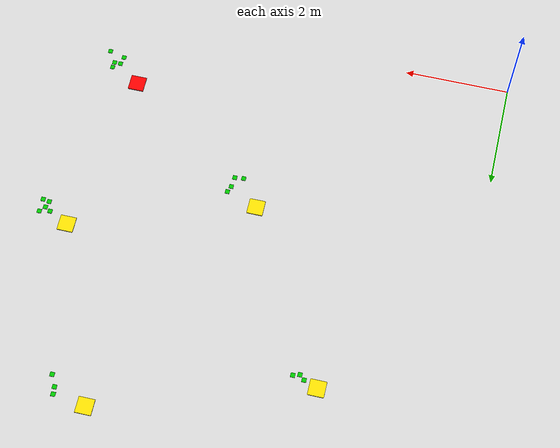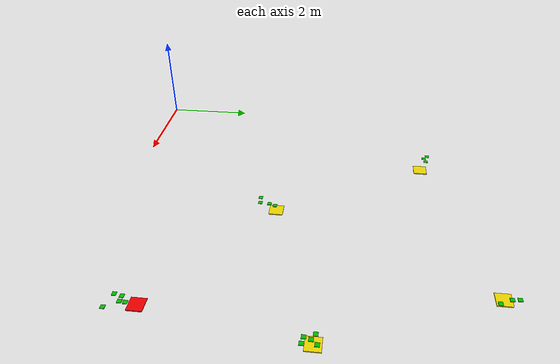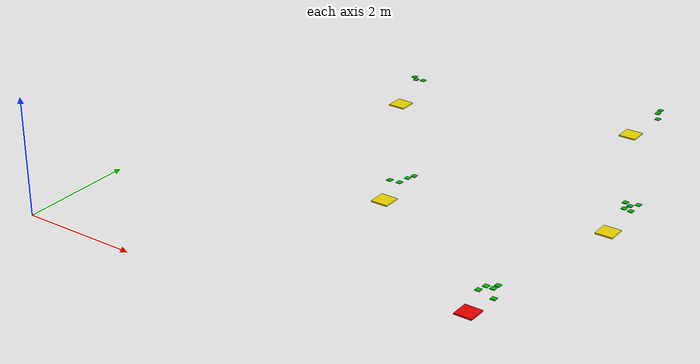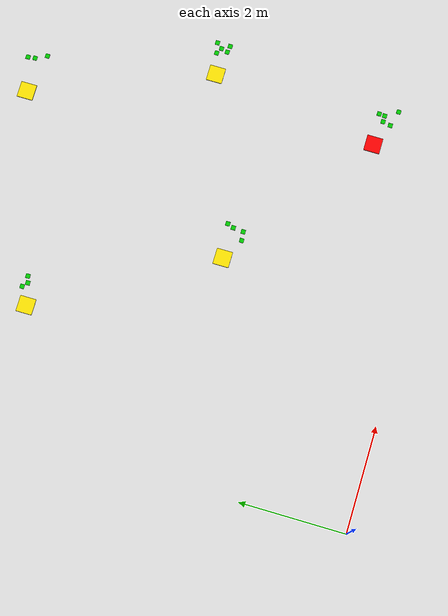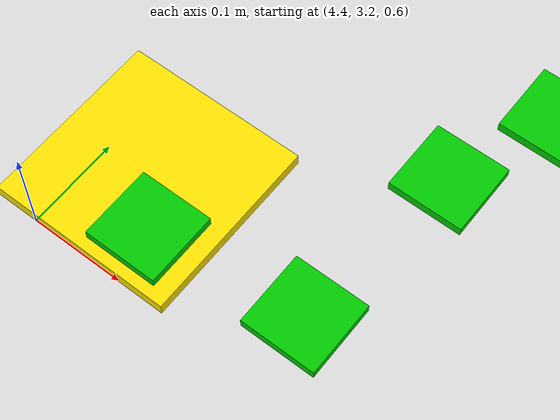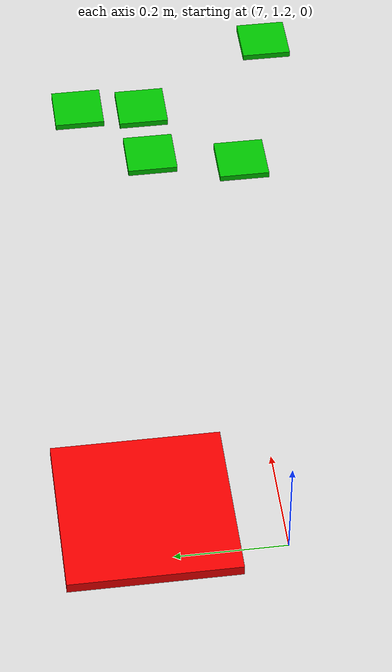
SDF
<sdf version="1.5">
 <world name="default">
  <include><uri>model://sun</uri></include>
  <scene>
   <ambient>0.8 0.8 0.8 1</ambient>
   <background>0.8 0.9 1 1</background>
   <shadows>false</shadows>
   <grid>false</grid>
   <origin_visual>false</origin_visual>
  </scene>
  <physics name="default_physics" default="0" type="ode">
   <gravity>0 0 -9.8066</gravity>
   <ode>
    <solver>
     <type>quick</type>
     <iters>10</iters>
     <sor>1.3</sor>
     <use_dynamic_moi_rescaling>0</use_dynamic_moi_rescaling>
    </solver>
    <constraints>
     <cfm>0</cfm>
     <erp>0.2</erp>
     <contact_max_correcting_vel>100</contact_max_correcting_vel>
     <contact_surface_layer>0.001</contact_surface_layer>
    </constraints>
   </ode>
   <max_step_size>0.004</max_step_size>
   <real_time_factor>1</real_time_factor>
   <real_time_update_rate>250</real_time_update_rate>
   <magnetic_field>6.0e-6 2.3e-5 -4.2e-5</magnetic_field>
  </physics>
  <model name="indicator_1">
   <static>true</static>
   <pose>7.0685515754086 1.4399182717863634 0.05 0 0 0</pose>
   <link name="link">
    <visual name="visual">
     <geometry><box><size>0.3 0.3 0.02</size></box></geometry>
     <material><ambient>1.0 0.0 0.0 1</ambient><diffuse>1.0 0.0 0.0 1</diffuse></material>
    </visual>
   </link>
  </model>
  <model name="contamination_1_1">
   <static>true</static>
   <pose>7.490847541052654 1.4981594231204958 0.600 0 0 0</pose>
   <link name="link">
    <visual name="visual">
     <geometry><box><size>0.08 0.08 0.01</size></box></geometry>
     <material><ambient>0.0 0.8 0.0 1</ambient><diffuse>0.0 0.8 0.0 1</diffuse></material>
    </visual>
   </link>
  </model>
  <model name="contamination_1_2">
   <static>true</static>
   <pose>7.366022917401587 1.3914872751742542 0.600 0 0 0</pose>
   <link name="link">
    <visual name="visual">
     <geometry><box><size>0.08 0.08 0.01</size></box></geometry>
     <material><ambient>0.0 0.8 0.0 1</ambient><diffuse>0.0 0.8 0.0 1</diffuse></material>
    </visual>
   </link>
  </model>
  <model name="contamination_1_3">
   <static>true</static>
   <pose>7.481066719166881 1.3926934181031771 0.600 0 0 0</pose>
   <link name="link">
    <visual name="visual">
     <geometry><box><size>0.08 0.08 0.01</size></box></geometry>
     <material><ambient>0.0 0.8 0.0 1</ambient><diffuse>0.0 0.8 0.0 1</diffuse></material>
    </visual>
   </link>
  </model>
  <model name="contamination_1_4">
   <static>true</static>
   <pose>7.62628495944137 1.164732355172533 0.600 0 0 0</pose>
   <link name="link">
    <visual name="visual">
     <geometry><box><size>0.08 0.08 0.01</size></box></geometry>
     <material><ambient>0.0 0.8 0.0 1</ambient><diffuse>0.0 0.8 0.0 1</diffuse></material>
    </visual>
   </link>
  </model>
  <model name="contamination_1_5">
   <static>true</static>
   <pose>7.334357686050633 1.2455412994454522 0.600 0 0 0</pose>
   <link name="link">
    <visual name="visual">
     <geometry><box><size>0.08 0.08 0.01</size></box></geometry>
     <material><ambient>0.0 0.8 0.0 1</ambient><diffuse>0.0 0.8 0.0 1</diffuse></material>
    </visual>
   </link>
  </model>
  <model name="indicator_2">
   <static>true</static>
   <pose>4.1969100952901055 3.523833008313628 0.05 0 0 0</pose>
   <link name="link">
    <visual name="visual">
     <geometry><box><size>0.3 0.3 0.02</size></box></geometry>
     <material><ambient>1.0 0.9 0.0 1</ambient><diffuse>1.0 0.9 0.0 1</diffuse></material>
    </visual>
   </link>
  </model>
  <model name="contamination_2_1">
   <static>true</static>
   <pose>4.485733582406367 3.256964531318277 0.600 0 0 0</pose>
   <link name="link">
    <visual name="visual">
     <geometry><box><size>0.08 0.08 0.01</size></box></geometry>
     <material><ambient>0.0 0.8 0.0 1</ambient><diffuse>0.0 0.8 0.0 1</diffuse></material>
    </visual>
   </link>
  </model>
  <model name="contamination_2_2">
   <static>true</static>
   <pose>4.71487176230586 3.5844334816857137 0.600 0 0 0</pose>
   <link name="link">
    <visual name="visual">
     <geometry><box><size>0.08 0.08 0.01</size></box></geometry>
     <material><ambient>0.0 0.8 0.0 1</ambient><diffuse>0.0 0.8 0.0 1</diffuse></material>
    </visual>
   </link>
  </model>
  <model name="contamination_2_3">
   <static>true</static>
   <pose>4.670698059492488 3.467213678802977 0.600 0 0 0</pose>
   <link name="link">
    <visual name="visual">
     <geometry><box><size>0.08 0.08 0.01</size></box></geometry>
     <material><ambient>0.0 0.8 0.0 1</ambient><diffuse>0.0 0.8 0.0 1</diffuse></material>
    </visual>
   </link>
  </model>
  <model name="contamination_2_4">
   <static>true</static>
   <pose>4.650255896048404 3.274867355742978 0.600 0 0 0</pose>
   <link name="link">
    <visual name="visual">
     <geometry><box><size>0.08 0.08 0.01</size></box></geometry>
     <material><ambient>0.0 0.8 0.0 1</ambient><diffuse>0.0 0.8 0.0 1</diffuse></material>
    </visual>
   </link>
  </model>
  <model name="indicator_3">
   <static>true</static>
   <pose>7.55226277904872 4.639175963411562 0.05 0 0 0</pose>
   <link name="link">
    <visual name="visual">
     <geometry><box><size>0.3 0.3 0.02</size></box></geometry>
     <material><ambient>1.0 0.9 0.0 1</ambient><diffuse>1.0 0.9 0.0 1</diffuse></material>
    </visual>
   </link>
  </model>
  <model name="contamination_3_1">
   <static>true</static>
   <pose>7.84498864605916 4.5093805499662 0.600 0 0 0</pose>
   <link name="link">
    <visual name="visual">
     <geometry><box><size>0.08 0.08 0.01</size></box></geometry>
     <material><ambient>0.0 0.8 0.0 1</ambient><diffuse>0.0 0.8 0.0 1</diffuse></material>
    </visual>
   </link>
  </model>
  <model name="contamination_3_2">
   <static>true</static>
   <pose>7.967650872556237 4.732567409519214 0.600 0 0 0</pose>
   <link name="link">
    <visual name="visual">
     <geometry><box><size>0.08 0.08 0.01</size></box></geometry>
     <material><ambient>0.0 0.8 0.0 1</ambient><diffuse>0.0 0.8 0.0 1</diffuse></material>
    </visual>
   </link>
  </model>
  <model name="contamination_3_3">
   <static>true</static>
   <pose>7.967775105060766 4.487264380587428 0.600 0 0 0</pose>
   <link name="link">
    <visual name="visual">
     <geometry><box><size>0.08 0.08 0.01</size></box></geometry>
     <material><ambient>0.0 0.8 0.0 1</ambient><diffuse>0.0 0.8 0.0 1</diffuse></material>
    </visual>
   </link>
  </model>
  <model name="contamination_3_4">
   <static>true</static>
   <pose>7.773114068863609 4.692902329295276 0.600 0 0 0</pose>
   <link name="link">
    <visual name="visual">
     <geometry><box><size>0.08 0.08 0.01</size></box></geometry>
     <material><ambient>0.0 0.8 0.0 1</ambient><diffuse>0.0 0.8 0.0 1</diffuse></material>
    </visual>
   </link>
  </model>
  <model name="contamination_3_5">
   <static>true</static>
   <pose>7.879924090120151 4.629476594852408 0.600 0 0 0</pose>
   <link name="link">
    <visual name="visual">
     <geometry><box><size>0.08 0.08 0.01</size></box></geometry>
     <material><ambient>0.0 0.8 0.0 1</ambient><diffuse>0.0 0.8 0.0 1</diffuse></material>
    </visual>
   </link>
  </model>
  <model name="indicator_4">
   <static>true</static>
   <pose>2.3323242917461773 6.722795139432913 0.05 0 0 0</pose>
   <link name="link">
    <visual name="visual">
     <geometry><box><size>0.3 0.3 0.02</size></box></geometry>
     <material><ambient>1.0 0.9 0.0 1</ambient><diffuse>1.0 0.9 0.0 1</diffuse></material>
    </visual>
   </link>
  </model>
  <model name="contamination_4_1">
   <static>true</static>
   <pose>2.6491454064920146 6.725932400422126 0.600 0 0 0</pose>
   <link name="link">
    <visual name="visual">
     <geometry><box><size>0.08 0.08 0.01</size></box></geometry>
     <material><ambient>0.0 0.8 0.0 1</ambient><diffuse>0.0 0.8 0.0 1</diffuse></material>
    </visual>
   </link>
  </model>
  <model name="contamination_4_2">
   <static>true</static>
   <pose>2.7691786672502627 6.762069233688982 0.600 0 0 0</pose>
   <link name="link">
    <visual name="visual">
     <geometry><box><size>0.08 0.08 0.01</size></box></geometry>
     <material><ambient>0.0 0.8 0.0 1</ambient><diffuse>0.0 0.8 0.0 1</diffuse></material>
    </visual>
   </link>
  </model>
  <model name="contamination_4_3">
   <static>true</static>
   <pose>2.559700809359749 6.805078952601251 0.600 0 0 0</pose>
   <link name="link">
    <visual name="visual">
     <geometry><box><size>0.08 0.08 0.01</size></box></geometry>
     <material><ambient>0.0 0.8 0.0 1</ambient><diffuse>0.0 0.8 0.0 1</diffuse></material>
    </visual>
   </link>
  </model>
  <model name="indicator_5">
   <static>true</static>
   <pose>6.236087034357251 7.949603664456221 0.05 0 0 0</pose>
   <link name="link">
    <visual name="visual">
     <geometry><box><size>0.3 0.3 0.02</size></box></geometry>
     <material><ambient>1.0 0.9 0.0 1</ambient><diffuse>1.0 0.9 0.0 1</diffuse></material>
    </visual>
   </link>
  </model>
  <model name="contamination_5_1">
   <static>true</static>
   <pose>6.727055506073349 7.884676087165214 0.600 0 0 0</pose>
   <link name="link">
    <visual name="visual">
     <geometry><box><size>0.08 0.08 0.01</size></box></geometry>
     <material><ambient>0.0 0.8 0.0 1</ambient><diffuse>0.0 0.8 0.0 1</diffuse></material>
    </visual>
   </link>
  </model>
  <model name="contamination_5_2">
   <static>true</static>
   <pose>6.830302818412449 7.677086360765562 0.600 0 0 0</pose>
   <link name="link">
    <visual name="visual">
     <geometry><box><size>0.08 0.08 0.01</size></box></geometry>
     <material><ambient>0.0 0.8 0.0 1</ambient><diffuse>0.0 0.8 0.0 1</diffuse></material>
    </visual>
   </link>
  </model>
  <model name="contamination_5_3">
   <static>true</static>
   <pose>6.711982817132433 8.016587327756165 0.600 0 0 0</pose>
   <link name="link">
    <visual name="visual">
     <geometry><box><size>0.08 0.08 0.01</size></box></geometry>
     <material><ambient>0.0 0.8 0.0 1</ambient><diffuse>0.0 0.8 0.0 1</diffuse></material>
    </visual>
   </link>
  </model>
 </world>
</sdf>
